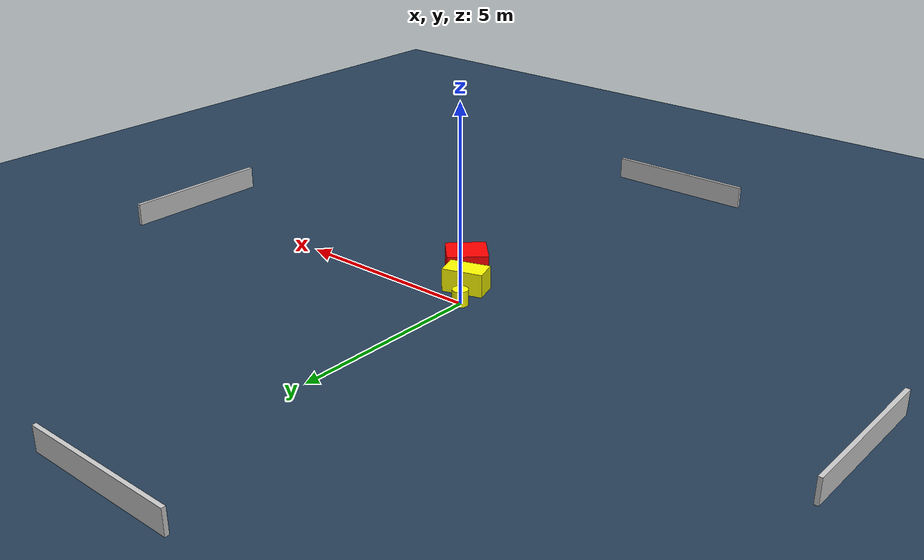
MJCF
<?xml version="1.0" ?>
<mujoco model="generated_environment">
  <option timestep="0.01" integrator="RK4" cone="elliptic"/>
  <default>
    <geom density="1"/>
  </default>
  <asset>
    <texture builtin="gradient" height="3072" name="skybox" rgb1="0.3 0.5 0.7" rgb2="0 0 0" type="skybox" width="512"/>
    <texture builtin="checker" height="300" name="groundplane" rgb1="0.2 0.3 0.4" rgb2="0.1 0.2 0.3" type="2d" width="300"/>
    <material name="groundplane" reflectance="0.2" texrepeat="5 5" texture="groundplane"/>
  </asset>
  <worldbody>
    <light dir="0 0 -1" directional="true" pos="0 0 1.5"/>
    <geom condim="3" friction="0.5 0.005 0.001" material="groundplane" name="floor" pos="0 0 0" size="0 0 0.05" type="plane"/>
    <body name="walls">
      <geom name="wall_1" condim="4" pos="-10.0 0.0 0.3" rgba="0.800000011920929 0.800000011920929 0.800000011920929 1.0" size="0.05 2.0 0.3" type="box"/>
      <geom name="wall_2" condim="4" pos="10.0 0.0 0.3" rgba="0.800000011920929 0.800000011920929 0.800000011920929 1.0" size="0.05 2.0 0.3" type="box"/>
      <geom name="wall_3" condim="4" pos="0.0 -10.0 0.3" rgba="0.800000011920929 0.800000011920929 0.800000011920929 1.0" size="2.0 0.05 0.3" type="box"/>
      <geom name="wall_4" condim="4" pos="0.0 10.0 0.3" rgba="0.800000011920929 0.800000011920929 0.800000011920929 1.0" size="2.0 0.05 0.3" type="box"/>
    </body>
    <body name="robot">
      <joint name="joint_x" type="slide" pos="0 0 0" axis="1 0 0"/>
      <joint name="joint_y" type="slide" pos="0 0 0" axis="0 1 0"/>
      <geom name="robot" type="cylinder" pos="0.0 0.0 0.2" size="0.2 0.2 0.0" mass="5.0" friction="1.0 0.005 0.0001" condim="4" rgba="1.0 1.0 0.0 1.0"/>
    </body>
    <body name="obstacle_1_movable">
      <geom name="obstacle_1_movable" condim="4" pos="0.41549113616886835 -0.7080266408247641 0.3" euler="0 0 18.28336453022416" friction="0.0 0.005 0.001" rgba="1.0 1.0 0.0 1.0" size="0.5235648001425323 0.3000713618697158 0.3" type="box" mass="0.1"/>
      <joint type="free"/>
    </body>
    <body name="obstacle_2_static">
      <geom name="obstacle_2_static" condim="4" pos="1.1081626445974477 -1.5415310430864313 0.3" euler="0 0 224.26523875190614" friction="0.0 0.005 0.001" rgba="1.0 0.0 0.0 1.0" size="0.5265870213958614 0.46593163085142303 0.3" type="box"/>
    </body>
  </worldbody>
  <actuator>
    <motor name="actuator_x" joint="joint_x" gear="1" ctrlrange="-1 1"/>
    <motor name="actuator_y" joint="joint_y" gear="1" ctrlrange="-1 1"/>
  </actuator>
</mujoco>
